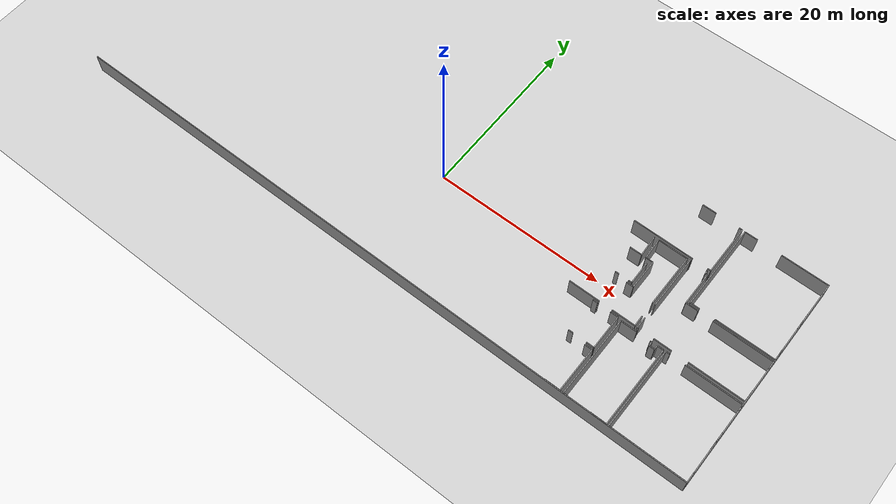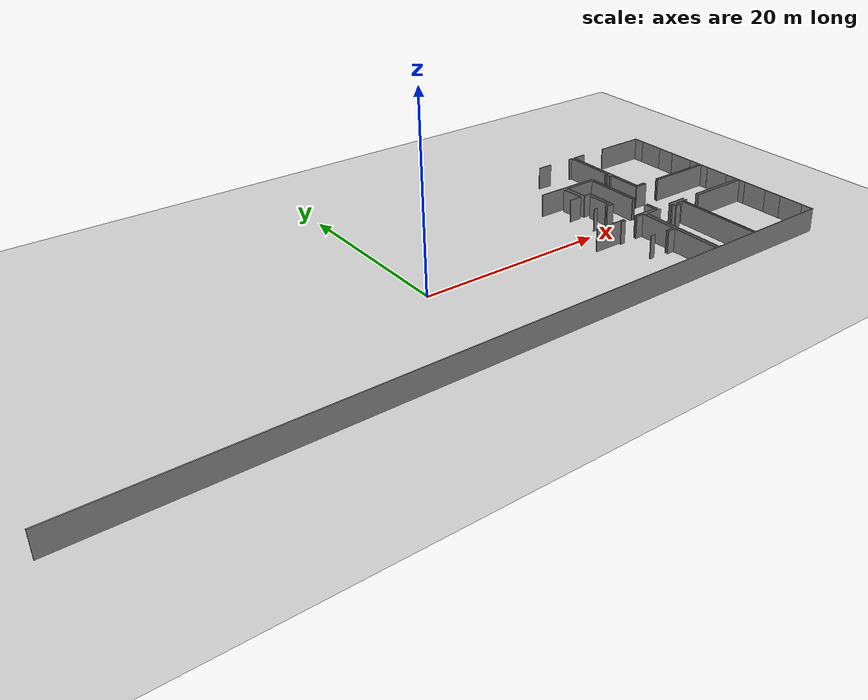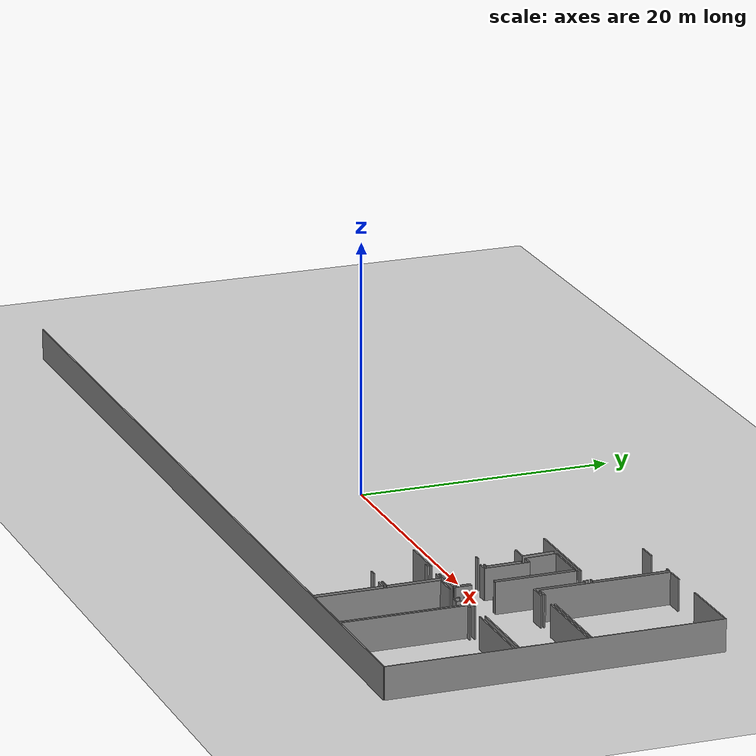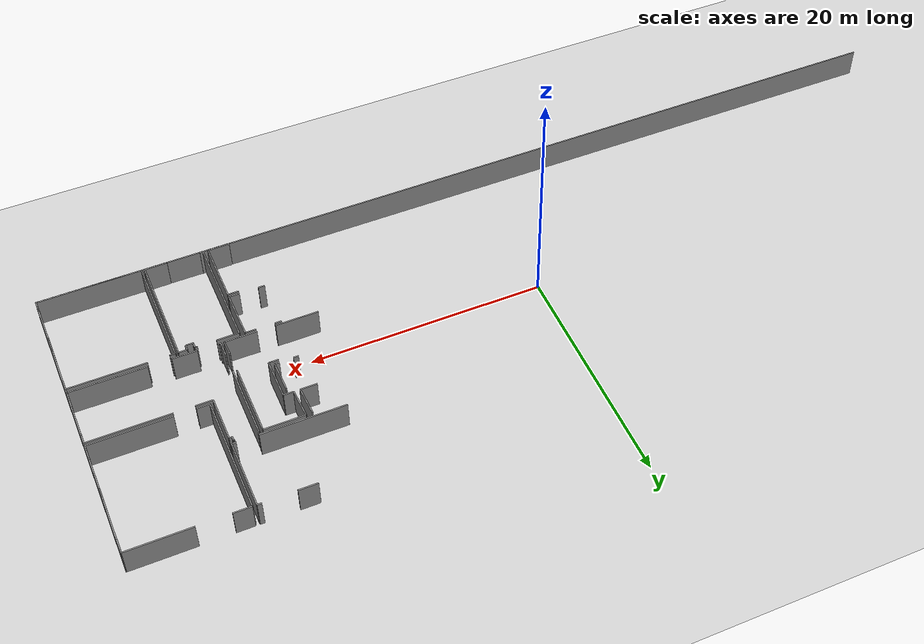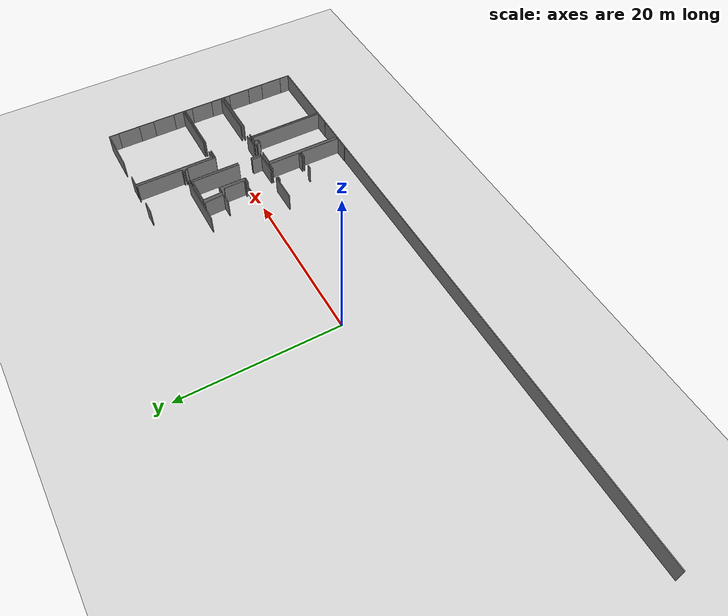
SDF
<sdf version="1.6">
 <world name="default">
  <model name="ground_plane">
   <static>1</static>
   <link name="link">
    <collision name="collision">
     <geometry><plane><normal>0 0 1</normal><size>100 100</size></plane></geometry>
     <surface><friction><ode><mu>100</mu><mu2>50</mu2></ode></friction></surface>
    </collision>
    <visual name="visual">
     <cast_shadows>0</cast_shadows>
     <geometry><plane><normal>0 0 1</normal><size>100 100</size></plane></geometry>
     <material>
      <script><uri>file://media/materials/scripts/gazebo.material</uri><name>Gazebo/Grey</name></script>
     </material>
    </visual>
   </link>
  </model>
  <model name="0510030967_A-40">
   <static>1</static>
   <link name="Wall_244">
    <collision name="Wall_244_Collision">
     <geometry><box><size>2.72639557175 0.1 2.5</size></box></geometry>
     <pose>1.36319778587 0 1.25 0 0 0</pose>
    </collision>
    <visual name="Wall_244_Visual">
     <pose>1.36319778587 0 1.25 0 0 0</pose>
     <geometry><box><size>2.72639557175 0.1 2.5</size></box></geometry>
     <material>
      <script><uri>file://media/materials/scripts/gazebo.material</uri><name>Gazebo/Grey</name></script>
      <ambient>1 1 1 1</ambient>
     </material>
    </visual>
    <pose>64.8392093135 -15.6792819328 0 0 0 3.14159265359</pose>
   </link>
   <link name="Wall_245">
    <collision name="Wall_245_Collision">
     <geometry><box><size>3.61483870149 0.1 2.5</size></box></geometry>
     <pose>1.80741935074 0 1.25 0 0 0</pose>
    </collision>
    <visual name="Wall_245_Visual">
     <pose>1.80741935074 0 1.25 0 0 0</pose>
     <geometry><box><size>3.61483870149 0.1 2.5</size></box></geometry>
     <material>
      <script><uri>file://media/materials/scripts/gazebo.material</uri><name>Gazebo/Grey</name></script>
      <ambient>1 1 1 1</ambient>
     </material>
    </visual>
    <pose>60.569527848 -15.6792819328 0 0 0 3.14159265359</pose>
   </link>
   <link name="Wall_251">
    <collision name="Wall_251_Collision">
     <geometry><box><size>2.48237548308 0.1 2.5</size></box></geometry>
     <pose>1.24118774154 0 1.25 0 0 0</pose>
    </collision>
    <visual name="Wall_251_Visual">
     <pose>1.24118774154 0 1.25 0 0 0</pose>
     <geometry><box><size>2.48237548308 0.1 2.5</size></box></geometry>
     <material>
      <script><uri>file://media/materials/scripts/gazebo.material</uri><name>Gazebo/Grey</name></script>
      <ambient>1 1 1 1</ambient>
     </material>
    </visual>
    <pose>60.8155699722 -6.30073507941 0 0 0 -1.5202964891</pose>
   </link>
   <link name="Wall_252">
    <collision name="Wall_252_Collision">
     <geometry><box><size>1.39411174731 0.1 2.5</size></box></geometry>
     <pose>0.697055873653 0 1.25 0 0 0</pose>
    </collision>
    <visual name="Wall_252_Visual">
     <pose>0.697055873653 0 1.25 0 0 0</pose>
     <geometry><box><size>1.39411174731 0.1 2.5</size></box></geometry>
     <material>
      <script><uri>file://media/materials/scripts/gazebo.material</uri><name>Gazebo/Grey</name></script>
      <ambient>1 1 1 1</ambient>
     </material>
    </visual>
    <pose>60.9408762553 -8.77994591644 0 0 0 3.14159265359</pose>
   </link>
   <link name="Wall_255">
    <collision name="Wall_255_Collision">
     <geometry><box><size>0.825599553112 0.1 2.5</size></box></geometry>
     <pose>0.412799776556 0 1.25 0 0 0</pose>
    </collision>
    <visual name="Wall_255_Visual">
     <pose>0.412799776556 0 1.25 0 0 0</pose>
     <geometry><box><size>0.825599553112 0.1 2.5</size></box></geometry>
     <material>
      <script><uri>file://media/materials/scripts/gazebo.material</uri><name>Gazebo/Grey</name></script>
      <ambient>1 1 1 1</ambient>
     </material>
    </visual>
    <pose>61.4888214608 -12.2692244214 0 0 0 0.0</pose>
   </link>
   <link name="Wall_256">
    <collision name="Wall_256_Collision">
     <geometry><box><size>3.48927850496 0.1 2.5</size></box></geometry>
     <pose>1.74463925248 0 1.25 0 0 0</pose>
    </collision>
    <visual name="Wall_256_Visual">
     <pose>1.74463925248 0 1.25 0 0 0</pose>
     <geometry><box><size>3.48927850496 0.1 2.5</size></box></geometry>
     <material>
      <script><uri>file://media/materials/scripts/gazebo.material</uri><name>Gazebo/Grey</name></script>
      <ambient>1 1 1 1</ambient>
     </material>
    </visual>
    <pose>62.3144210139 -12.2692244214 0 0 0 1.57079632679</pose>
   </link>
   <link name="Wall_257">
    <collision name="Wall_257_Collision">
     <geometry><box><size>0.848197849353 0.1 2.5</size></box></geometry>
     <pose>0.424098924677 0 1.25 0 0 0</pose>
    </collision>
    <visual name="Wall_257_Visual">
     <pose>0.424098924677 0 1.25 0 0 0</pose>
     <geometry><box><size>0.848197849353 0.1 2.5</size></box></geometry>
     <material>
      <script><uri>file://media/materials/scripts/gazebo.material</uri><name>Gazebo/Grey</name></script>
      <ambient>1 1 1 1</ambient>
     </material>
    </visual>
    <pose>62.3144210139 -8.77994591644 0 0 0 3.14159265359</pose>
   </link>
   <link name="Wall_258">
    <collision name="Wall_258_Collision">
     <geometry><box><size>2.50028858254 0.1 2.5</size></box></geometry>
     <pose>1.25014429127 0 1.25 0 0 0</pose>
    </collision>
    <visual name="Wall_258_Visual">
     <pose>1.25014429127 0 1.25 0 0 0</pose>
     <geometry><box><size>2.50028858254 0.1 2.5</size></box></geometry>
     <material>
      <script><uri>file://media/materials/scripts/gazebo.material</uri><name>Gazebo/Grey</name></script>
      <ambient>1 1 1 1</ambient>
     </material>
    </visual>
    <pose>61.4662231645 -8.77994591644 0 0 0 1.61915471171</pose>
   </link>
   <link name="Wall_259">
    <collision name="Wall_259_Collision">
     <geometry><box><size>3.45246105603 0.1 2.5</size></box></geometry>
     <pose>1.72623052801 0 1.25 0 0 0</pose>
    </collision>
    <visual name="Wall_259_Visual">
     <pose>1.72623052801 0 1.25 0 0 0</pose>
     <geometry><box><size>3.45246105603 0.1 2.5</size></box></geometry>
     <material>
      <script><uri>file://media/materials/scripts/gazebo.material</uri><name>Gazebo/Grey</name></script>
      <ambient>1 1 1 1</ambient>
     </material>
    </visual>
    <pose>61.3453603667 -6.28258026839 0 0 0 0.0</pose>
   </link>
   <link name="Wall_260">
    <collision name="Wall_260_Collision">
     <geometry><box><size>6.28321505199 0.1 2.5</size></box></geometry>
     <pose>3.14160752599 0 1.25 0 0 0</pose>
    </collision>
    <visual name="Wall_260_Visual">
     <pose>3.14160752599 0 1.25 0 0 0</pose>
     <geometry><box><size>6.28321505199 0.1 2.5</size></box></geometry>
     <material>
      <script><uri>file://media/materials/scripts/gazebo.material</uri><name>Gazebo/Grey</name></script>
      <ambient>1 1 1 1</ambient>
     </material>
    </visual>
    <pose>64.7978214227 -6.28258026839 0 0 0 -1.57079632679</pose>
   </link>
   <link name="Wall_261">
    <collision name="Wall_261_Collision">
     <geometry><box><size>1.32125219786 0.1 2.5</size></box></geometry>
     <pose>0.660626098932 0 1.25 0 0 0</pose>
    </collision>
    <visual name="Wall_261_Visual">
     <pose>0.660626098932 0 1.25 0 0 0</pose>
     <geometry><box><size>1.32125219786 0.1 2.5</size></box></geometry>
     <material>
      <script><uri>file://media/materials/scripts/gazebo.material</uri><name>Gazebo/Grey</name></script>
      <ambient>1 1 1 1</ambient>
     </material>
    </visual>
    <pose>64.7978214227 -14.3586781266 0 0 0 -1.53946645465</pose>
   </link>
   <link name="Wall_262">
    <collision name="Wall_262_Collision">
     <geometry><box><size>0.395724097655 0.1 2.5</size></box></geometry>
     <pose>0.197862048828 0 1.25 0 0 0</pose>
    </collision>
    <visual name="Wall_262_Visual">
     <pose>0.197862048828 0 1.25 0 0 0</pose>
     <geometry><box><size>0.395724097655 0.1 2.5</size></box></geometry>
     <material>
      <script><uri>file://media/materials/scripts/gazebo.material</uri><name>Gazebo/Grey</name></script>
      <ambient>1 1 1 1</ambient>
     </material>
    </visual>
    <pose>61.9208551805 -11.9833178869 0 0 0 3.14159265359</pose>
   </link>
   <link name="Wall_263">
    <collision name="Wall_263_Collision">
     <geometry><box><size>0.428225018091 0.1 2.5</size></box></geometry>
     <pose>0.214112509046 0 1.25 0 0 0</pose>
    </collision>
    <visual name="Wall_263_Visual">
     <pose>0.214112509046 0 1.25 0 0 0</pose>
     <geometry><box><size>0.428225018091 0.1 2.5</size></box></geometry>
     <material>
      <script><uri>file://media/materials/scripts/gazebo.material</uri><name>Gazebo/Grey</name></script>
      <ambient>1 1 1 1</ambient>
     </material>
    </visual>
    <pose>60.3662701385 -11.9833178869 0 0 0 3.14159265359</pose>
   </link>
   <link name="Wall_266">
    <collision name="Wall_266_Collision">
     <geometry><box><size>2.72046945415 0.1 2.5</size></box></geometry>
     <pose>1.36023472707 0 1.25 0 0 0</pose>
    </collision>
    <visual name="Wall_266_Visual">
     <pose>1.36023472707 0 1.25 0 0 0</pose>
     <geometry><box><size>2.72046945415 0.1 2.5</size></box></geometry>
     <material>
      <script><uri>file://media/materials/scripts/gazebo.material</uri><name>Gazebo/Grey</name></script>
      <ambient>1 1 1 1</ambient>
     </material>
    </visual>
    <pose>61.890639481 -9.26301623776 0 0 0 -1.55968930235</pose>
   </link>
   <link name="Wall_267">
    <collision name="Wall_267_Collision">
     <geometry><box><size>0.89212487463 0.1 2.5</size></box></geometry>
     <pose>0.446062437315 0 1.25 0 0 0</pose>
    </collision>
    <visual name="Wall_267_Visual">
     <pose>0.446062437315 0 1.25 0 0 0</pose>
     <geometry><box><size>0.89212487463 0.1 2.5</size></box></geometry>
     <material>
      <script><uri>file://media/materials/scripts/gazebo.material</uri><name>Gazebo/Grey</name></script>
      <ambient>1 1 1 1</ambient>
     </material>
    </visual>
    <pose>63.0368047533 -20.0812523011 0 0 0 3.14159265359</pose>
   </link>
   <link name="Wall_268">
    <collision name="Wall_268_Collision">
     <geometry><box><size>0.552007820534 0.1 2.5</size></box></geometry>
     <pose>0.276003910267 0 1.25 0 0 0</pose>
    </collision>
    <visual name="Wall_268_Visual">
     <pose>0.276003910267 0 1.25 0 0 0</pose>
     <geometry><box><size>0.552007820534 0.1 2.5</size></box></geometry>
     <material>
      <script><uri>file://media/materials/scripts/gazebo.material</uri><name>Gazebo/Grey</name></script>
      <ambient>1 1 1 1</ambient>
     </material>
    </visual>
    <pose>60.5418512829 -20.0812523011 0 0 0 3.14159265359</pose>
   </link>
   <link name="Wall_272">
    <collision name="Wall_272_Collision">
     <geometry><box><size>0.550357383168 0.1 2.5</size></box></geometry>
     <pose>0.275178691584 0 1.25 0 0 0</pose>
    </collision>
    <visual name="Wall_272_Visual">
     <pose>0.275178691584 0 1.25 0 0 0</pose>
     <geometry><box><size>0.550357383168 0.1 2.5</size></box></geometry>
     <material>
      <script><uri>file://media/materials/scripts/gazebo.material</uri><name>Gazebo/Grey</name></script>
      <ambient>1 1 1 1</ambient>
     </material>
    </visual>
    <pose>59.9898434624 -15.9254510137 0 0 0 0.0</pose>
   </link>
   <link name="Wall_273">
    <collision name="Wall_273_Collision">
     <geometry><box><size>0.905582286998 0.1 2.5</size></box></geometry>
     <pose>0.452791143499 0 1.25 0 0 0</pose>
    </collision>
    <visual name="Wall_273_Visual">
     <pose>0.452791143499 0 1.25 0 0 0</pose>
     <geometry><box><size>0.905582286998 0.1 2.5</size></box></geometry>
     <material>
      <script><uri>file://media/materials/scripts/gazebo.material</uri><name>Gazebo/Grey</name></script>
      <ambient>1 1 1 1</ambient>
     </material>
    </visual>
    <pose>62.1083702566 -15.9254510137 0 0 0 0.0</pose>
   </link>
   <link name="Wall_274">
    <collision name="Wall_274_Collision">
     <geometry><box><size>4.15586411753 0.1 2.5</size></box></geometry>
     <pose>2.07793205876 0 1.25 0 0 0</pose>
    </collision>
    <visual name="Wall_274_Visual">
     <pose>2.07793205876 0 1.25 0 0 0</pose>
     <geometry><box><size>4.15586411753 0.1 2.5</size></box></geometry>
     <material>
      <script><uri>file://media/materials/scripts/gazebo.material</uri><name>Gazebo/Grey</name></script>
      <ambient>1 1 1 1</ambient>
     </material>
    </visual>
    <pose>63.0139525436 -15.9254510137 0 0 0 -1.56529751254</pose>
   </link>
   <link name="Wall_277">
    <collision name="Wall_277_Collision">
     <geometry><box><size>0.909898815494 0.1 2.5</size></box></geometry>
     <pose>0.454949407747 0 1.25 0 0 0</pose>
    </collision>
    <visual name="Wall_277_Visual">
     <pose>0.454949407747 0 1.25 0 0 0</pose>
     <geometry><box><size>0.909898815494 0.1 2.5</size></box></geometry>
     <material>
      <script><uri>file://media/materials/scripts/gazebo.material</uri><name>Gazebo/Grey</name></script>
      <ambient>1 1 1 1</ambient>
     </material>
    </visual>
    <pose>62.1261441974 -20.3497657649 0 0 0 0.0</pose>
   </link>
   <link name="Wall_278">
    <collision name="Wall_278_Collision">
     <geometry><box><size>5.35439968515 0.1 2.5</size></box></geometry>
     <pose>2.67719984257 0 1.25 0 0 0</pose>
    </collision>
    <visual name="Wall_278_Visual">
     <pose>2.67719984257 0 1.25 0 0 0</pose>
     <geometry><box><size>5.35439968515 0.1 2.5</size></box></geometry>
     <material>
      <script><uri>file://media/materials/scripts/gazebo.material</uri><name>Gazebo/Grey</name></script>
      <ambient>1 1 1 1</ambient>
     </material>
    </visual>
    <pose>63.0360430129 -20.3497657649 0 0 0 -1.57079632679</pose>
   </link>
   <link name="Wall_279">
    <collision name="Wall_279_Collision">
     <geometry><box><size>1.82766894766 0.1 2.5</size></box></geometry>
     <pose>0.913834473828 0 1.25 0 0 0</pose>
    </collision>
    <visual name="Wall_279_Visual">
     <pose>0.913834473828 0 1.25 0 0 0</pose>
     <geometry><box><size>1.82766894766 0.1 2.5</size></box></geometry>
     <material>
      <script><uri>file://media/materials/scripts/gazebo.material</uri><name>Gazebo/Grey</name></script>
      <ambient>1 1 1 1</ambient>
     </material>
    </visual>
    <pose>63.0360430129 -25.70416545 0 0 0 3.14159265359</pose>
   </link>
   <link name="Wall_290">
    <collision name="Wall_290_Collision">
     <geometry><box><size>6.39519087943 0.1 2.5</size></box></geometry>
     <pose>3.19759543971 0 1.25 0 0 0</pose>
    </collision>
    <visual name="Wall_290_Visual">
     <pose>3.19759543971 0 1.25 0 0 0</pose>
     <geometry><box><size>6.39519087943 0.1 2.5</size></box></geometry>
     <material>
      <script><uri>file://media/materials/scripts/gazebo.material</uri><name>Gazebo/Grey</name></script>
      <ambient>1 1 1 1</ambient>
     </material>
    </visual>
    <pose>77.4469003517 -15.6867723793 0 0 0 3.14159265359</pose>
   </link>
   <link name="Wall_291">
    <collision name="Wall_291_Collision">
     <geometry><box><size>2.08323282593 0.1 2.5</size></box></geometry>
     <pose>1.04161641296 0 1.25 0 0 0</pose>
    </collision>
    <visual name="Wall_291_Visual">
     <pose>1.04161641296 0 1.25 0 0 0</pose>
     <geometry><box><size>2.08323282593 0.1 2.5</size></box></geometry>
     <material>
      <script><uri>file://media/materials/scripts/gazebo.material</uri><name>Gazebo/Grey</name></script>
      <ambient>1 1 1 1</ambient>
     </material>
    </visual>
    <pose>69.1206977541 -15.6867723793 0 0 0 3.14159265359</pose>
   </link>
   <link name="Wall_292">
    <collision name="Wall_292_Collision">
     <geometry><box><size>0.143461094113 0.1 2.5</size></box></geometry>
     <pose>0.0717305470565 0 1.25 0 0 0</pose>
    </collision>
    <visual name="Wall_292_Visual">
     <pose>0.0717305470565 0 1.25 0 0 0</pose>
     <geometry><box><size>0.143461094113 0.1 2.5</size></box></geometry>
     <material>
      <script><uri>file://media/materials/scripts/gazebo.material</uri><name>Gazebo/Grey</name></script>
      <ambient>1 1 1 1</ambient>
     </material>
    </visual>
    <pose>65.266799548 -15.6867723793 0 0 0 3.14159265359</pose>
   </link>
   <link name="Wall_293">
    <collision name="Wall_293_Collision">
     <geometry><box><size>1.31387509998 0.1 2.5</size></box></geometry>
     <pose>0.656937549989 0 1.25 0 0 0</pose>
    </collision>
    <visual name="Wall_293_Visual">
     <pose>0.656937549989 0 1.25 0 0 0</pose>
     <geometry><box><size>1.31387509998 0.1 2.5</size></box></geometry>
     <material>
      <script><uri>file://media/materials/scripts/gazebo.material</uri><name>Gazebo/Grey</name></script>
      <ambient>1 1 1 1</ambient>
     </material>
    </visual>
    <pose>65.1233384539 -15.6867723793 0 0 0 1.57079632679</pose>
   </link>
   <link name="Wall_294">
    <collision name="Wall_294_Collision">
     <geometry><box><size>6.35862734394 0.1 2.5</size></box></geometry>
     <pose>3.17931367197 0 1.25 0 0 0</pose>
    </collision>
    <visual name="Wall_294_Visual">
     <pose>3.17931367197 0 1.25 0 0 0</pose>
     <geometry><box><size>6.35862734394 0.1 2.5</size></box></geometry>
     <material>
      <script><uri>file://media/materials/scripts/gazebo.material</uri><name>Gazebo/Grey</name></script>
      <ambient>1 1 1 1</ambient>
     </material>
    </visual>
    <pose>65.1233384539 -12.5802683865 0 0 0 1.57079632679</pose>
   </link>
   <link name="Wall_295">
    <collision name="Wall_295_Collision">
     <geometry><box><size>0.0845531758224 0.1 2.5</size></box></geometry>
     <pose>0.0422765879112 0 1.25 0 0 0</pose>
    </collision>
    <visual name="Wall_295_Visual">
     <pose>0.0422765879112 0 1.25 0 0 0</pose>
     <geometry><box><size>0.0845531758224 0.1 2.5</size></box></geometry>
     <material>
      <script><uri>file://media/materials/scripts/gazebo.material</uri><name>Gazebo/Grey</name></script>
      <ambient>1 1 1 1</ambient>
     </material>
    </visual>
    <pose>65.1233384539 -6.22164104257 0 0 0 0.0</pose>
   </link>
   <link name="Wall_296">
    <collision name="Wall_296_Collision">
     <geometry><box><size>0.100930592761 0.1 2.5</size></box></geometry>
     <pose>0.0504652963805 0 1.25 0 0 0</pose>
    </collision>
    <visual name="Wall_296_Visual">
     <pose>0.0504652963805 0 1.25 0 0 0</pose>
     <geometry><box><size>0.100930592761 0.1 2.5</size></box></geometry>
     <material>
      <script><uri>file://media/materials/scripts/gazebo.material</uri><name>Gazebo/Grey</name></script>
      <ambient>1 1 1 1</ambient>
     </material>
    </visual>
    <pose>67.0185483769 -6.22164104257 0 0 0 0.0</pose>
   </link>
   <link name="Wall_297">
    <collision name="Wall_297_Collision">
     <geometry><box><size>0.347480543883 0.1 2.5</size></box></geometry>
     <pose>0.173740271941 0 1.25 0 0 0</pose>
    </collision>
    <visual name="Wall_297_Visual">
     <pose>0.173740271941 0 1.25 0 0 0</pose>
     <geometry><box><size>0.347480543883 0.1 2.5</size></box></geometry>
     <material>
      <script><uri>file://media/materials/scripts/gazebo.material</uri><name>Gazebo/Grey</name></script>
      <ambient>1 1 1 1</ambient>
     </material>
    </visual>
    <pose>67.1194789696 -6.22164104257 0 0 0 -1.57079632679</pose>
   </link>
   <link name="Wall_298">
    <collision name="Wall_298_Collision">
     <geometry><box><size>0.258864753006 0.1 2.5</size></box></geometry>
     <pose>0.129432376503 0 1.25 0 0 0</pose>
    </collision>
    <visual name="Wall_298_Visual">
     <pose>0.129432376503 0 1.25 0 0 0</pose>
     <geometry><box><size>0.258864753006 0.1 2.5</size></box></geometry>
     <material>
      <script><uri>file://media/materials/scripts/gazebo.material</uri><name>Gazebo/Grey</name></script>
      <ambient>1 1 1 1</ambient>
     </material>
    </visual>
    <pose>67.1194789696 -6.56912158645 0 0 0 0.0</pose>
   </link>
   <link name="Wall_299">
    <collision name="Wall_299_Collision">
     <geometry><box><size>3.91775743649 0.1 2.5</size></box></geometry>
     <pose>1.95887871824 0 1.25 0 0 0</pose>
    </collision>
    <visual name="Wall_299_Visual">
     <pose>1.95887871824 0 1.25 0 0 0</pose>
     <geometry><box><size>3.91775743649 0.1 2.5</size></box></geometry>
     <material>
      <script><uri>file://media/materials/scripts/gazebo.material</uri><name>Gazebo/Grey</name></script>
      <ambient>1 1 1 1</ambient>
     </material>
    </visual>
    <pose>67.3783437226 -6.56912158645 0 0 0 -1.57079632679</pose>
   </link>
   <link name="Wall_300">
    <collision name="Wall_300_Collision">
     <geometry><box><size>1.4151865629 0.1 2.5</size></box></geometry>
     <pose>0.70759328145 0 1.25 0 0 0</pose>
    </collision>
    <visual name="Wall_300_Visual">
     <pose>0.70759328145 0 1.25 0 0 0</pose>
     <geometry><box><size>1.4151865629 0.1 2.5</size></box></geometry>
     <material>
      <script><uri>file://media/materials/scripts/gazebo.material</uri><name>Gazebo/Grey</name></script>
      <ambient>1 1 1 1</ambient>
     </material>
    </visual>
    <pose>67.3783437226 -10.4868790229 0 0 0 0.0</pose>
   </link>
   <link name="Wall_301">
    <collision name="Wall_301_Collision">
     <geometry><box><size>6.91799865426 0.1 2.5</size></box></geometry>
     <pose>3.45899932713 0 1.25 0 0 0</pose>
    </collision>
    <visual name="Wall_301_Visual">
     <pose>3.45899932713 0 1.25 0 0 0</pose>
     <geometry><box><size>6.91799865426 0.1 2.5</size></box></geometry>
     <material>
      <script><uri>file://media/materials/scripts/gazebo.material</uri><name>Gazebo/Grey</name></script>
      <ambient>1 1 1 1</ambient>
     </material>
    </visual>
    <pose>70.5469295517 -10.4868790229 0 0 0 0.0</pose>
   </link>
   <link name="Wall_302">
    <collision name="Wall_302_Collision">
     <geometry><box><size>0.9676641233 0.1 2.5</size></box></geometry>
     <pose>0.48383206165 0 1.25 0 0 0</pose>
    </collision>
    <visual name="Wall_302_Visual">
     <pose>0.48383206165 0 1.25 0 0 0</pose>
     <geometry><box><size>0.9676641233 0.1 2.5</size></box></geometry>
     <material>
      <script><uri>file://media/materials/scripts/gazebo.material</uri><name>Gazebo/Grey</name></script>
      <ambient>1 1 1 1</ambient>
     </material>
    </visual>
    <pose>77.464928206 -10.4868790229 0 0 0 -1.57079632679</pose>
   </link>
   <link name="Wall_303">
    <collision name="Wall_303_Collision">
     <geometry><box><size>1.44246796085 0.1 2.5</size></box></geometry>
     <pose>0.721233980425 0 1.25 0 0 0</pose>
    </collision>
    <visual name="Wall_303_Visual">
     <pose>0.721233980425 0 1.25 0 0 0</pose>
     <geometry><box><size>1.44246796085 0.1 2.5</size></box></geometry>
     <material>
      <script><uri>file://media/materials/scripts/gazebo.material</uri><name>Gazebo/Grey</name></script>
      <ambient>1 1 1 1</ambient>
     </material>
    </visual>
    <pose>77.464928206 -14.2444170782 0 0 0 -1.58329457573</pose>
   </link>
   <link name="Wall_304">
    <collision name="Wall_304_Collision">
     <geometry><box><size>1.90079601864 0.1 2.5</size></box></geometry>
     <pose>0.950398009319 0 1.25 0 0 0</pose>
    </collision>
    <visual name="Wall_304_Visual">
     <pose>0.950398009319 0 1.25 0 0 0</pose>
     <geometry><box><size>1.90079601864 0.1 2.5</size></box></geometry>
     <material>
      <script><uri>file://media/materials/scripts/gazebo.material</uri><name>Gazebo/Grey</name></script>
      <ambient>1 1 1 1</ambient>
     </material>
    </visual>
    <pose>68.4487158328 -25.7205428669 0 0 0 3.14159265359</pose>
   </link>
   <link name="Wall_305">
    <collision name="Wall_305_Collision">
     <geometry><box><size>0.28806479871 0.1 2.5</size></box></geometry>
     <pose>0.144032399355 0 1.25 0 0 0</pose>
    </collision>
    <visual name="Wall_305_Visual">
     <pose>0.144032399355 0 1.25 0 0 0</pose>
     <geometry><box><size>0.28806479871 0.1 2.5</size></box></geometry>
     <material>
      <script><uri>file://media/materials/scripts/gazebo.material</uri><name>Gazebo/Grey</name></script>
      <ambient>1 1 1 1</ambient>
     </material>
    </visual>
    <pose>63.7448423832 -25.7205428669 0 0 0 3.14159265359</pose>
   </link>
   <link name="Wall_306">
    <collision name="Wall_306_Collision">
     <geometry><box><size>9.61976462224 0.1 2.5</size></box></geometry>
     <pose>4.80988231112 0 1.25 0 0 0</pose>
    </collision>
    <visual name="Wall_306_Visual">
     <pose>4.80988231112 0 1.25 0 0 0</pose>
     <geometry><box><size>9.61976462224 0.1 2.5</size></box></geometry>
     <material>
      <script><uri>file://media/materials/scripts/gazebo.material</uri><name>Gazebo/Grey</name></script>
      <ambient>1 1 1 1</ambient>
     </material>
    </visual>
    <pose>63.4567775845 -25.7205428669 0 0 0 1.57079632679</pose>
   </link>
   <link name="Wall_307">
    <collision name="Wall_307_Collision">
     <geometry><box><size>1.88175251057 0.1 2.5</size></box></geometry>
     <pose>0.940876255285 0 1.25 0 0 0</pose>
    </collision>
    <visual name="Wall_307_Visual">
     <pose>0.940876255285 0 1.25 0 0 0</pose>
     <geometry><box><size>1.88175251057 0.1 2.5</size></box></geometry>
     <material>
      <script><uri>file://media/materials/scripts/gazebo.material</uri><name>Gazebo/Grey</name></script>
      <ambient>1 1 1 1</ambient>
     </material>
    </visual>
    <pose>63.4567775845 -16.1007782447 0 0 0 0.0</pose>
   </link>
   <link name="Wall_308">
    <collision name="Wall_308_Collision">
     <geometry><box><size>0.208716848426 0.1 2.5</size></box></geometry>
     <pose>0.104358424213 0 1.25 0 0 0</pose>
    </collision>
    <visual name="Wall_308_Visual">
     <pose>0.104358424213 0 1.25 0 0 0</pose>
     <geometry><box><size>0.208716848426 0.1 2.5</size></box></geometry>
     <material>
      <script><uri>file://media/materials/scripts/gazebo.material</uri><name>Gazebo/Grey</name></script>
      <ambient>1 1 1 1</ambient>
     </material>
    </visual>
    <pose>66.9009864537 -16.1007782447 0 0 0 0.0</pose>
   </link>
   <link name="Wall_309">
    <collision name="Wall_309_Collision">
     <geometry><box><size>0.475833788262 0.1 2.5</size></box></geometry>
     <pose>0.237916894131 0 1.25 0 0 0</pose>
    </collision>
    <visual name="Wall_309_Visual">
     <pose>0.237916894131 0 1.25 0 0 0</pose>
     <geometry><box><size>0.475833788262 0.1 2.5</size></box></geometry>
     <material>
      <script><uri>file://media/materials/scripts/gazebo.material</uri><name>Gazebo/Grey</name></script>
      <ambient>1 1 1 1</ambient>
     </material>
    </visual>
    <pose>67.1097033021 -16.1007782447 0 0 0 -1.57079632679</pose>
   </link>
   <link name="Wall_310">
    <collision name="Wall_310_Collision">
     <geometry><box><size>0.626150545279 0.1 2.5</size></box></geometry>
     <pose>0.31307527264 0 1.25 0 0 0</pose>
    </collision>
    <visual name="Wall_310_Visual">
     <pose>0.31307527264 0 1.25 0 0 0</pose>
     <geometry><box><size>0.626150545279 0.1 2.5</size></box></geometry>
     <material>
      <script><uri>file://media/materials/scripts/gazebo.material</uri><name>Gazebo/Grey</name></script>
      <ambient>1 1 1 1</ambient>
     </material>
    </visual>
    <pose>67.1097033021 -16.576612033 0 0 0 0.0</pose>
   </link>
   <link name="Wall_311">
    <collision name="Wall_311_Collision">
     <geometry><box><size>0.484085975091 0.1 2.5</size></box></geometry>
     <pose>0.242042987546 0 1.25 0 0 0</pose>
    </collision>
    <visual name="Wall_311_Visual">
     <pose>0.242042987546 0 1.25 0 0 0</pose>
     <geometry><box><size>0.484085975091 0.1 2.5</size></box></geometry>
     <material>
      <script><uri>file://media/materials/scripts/gazebo.material</uri><name>Gazebo/Grey</name></script>
      <ambient>1 1 1 1</ambient>
     </material>
    </visual>
    <pose>67.7358538474 -16.576612033 0 0 0 1.57079632679</pose>
   </link>
   <link name="Wall_312">
    <collision name="Wall_312_Collision">
     <geometry><box><size>0.717813297447 0.1 2.5</size></box></geometry>
     <pose>0.358906648723 0 1.25 0 0 0</pose>
    </collision>
    <visual name="Wall_312_Visual">
     <pose>0.358906648723 0 1.25 0 0 0</pose>
     <geometry><box><size>0.717813297447 0.1 2.5</size></box></geometry>
     <material>
      <script><uri>file://media/materials/scripts/gazebo.material</uri><name>Gazebo/Grey</name></script>
      <ambient>1 1 1 1</ambient>
     </material>
    </visual>
    <pose>67.7358538474 -16.0925260579 0 0 0 0.0</pose>
   </link>
   <link name="Wall_313">
    <collision name="Wall_313_Collision">
     <geometry><box><size>9.6280180822 0.1 2.5</size></box></geometry>
     <pose>4.8140090411 0 1.25 0 0 0</pose>
    </collision>
    <visual name="Wall_313_Visual">
     <pose>4.8140090411 0 1.25 0 0 0</pose>
     <geometry><box><size>9.6280180822 0.1 2.5</size></box></geometry>
     <material>
      <script><uri>file://media/materials/scripts/gazebo.material</uri><name>Gazebo/Grey</name></script>
      <ambient>1 1 1 1</ambient>
     </material>
    </visual>
    <pose>68.4536671449 -16.0925260579 0 0 0 -1.5713105876</pose>
   </link>
   <link name="Wall_314">
    <collision name="Wall_314_Collision">
     <geometry><box><size>8.77372503713 0.1 2.5</size></box></geometry>
     <pose>4.38686251857 0 1.25 0 0 0</pose>
    </collision>
    <visual name="Wall_314_Visual">
     <pose>4.38686251857 0 1.25 0 0 0</pose>
     <geometry><box><size>8.77372503713 0.1 2.5</size></box></geometry>
     <material>
      <script><uri>file://media/materials/scripts/gazebo.material</uri><name>Gazebo/Grey</name></script>
      <ambient>1 1 1 1</ambient>
     </material>
    </visual>
    <pose>77.4778777915 -25.7390785481 0 0 0 3.14159265359</pose>
   </link>
   <link name="Wall_315">
    <collision name="Wall_315_Collision">
     <geometry><box><size>9.66331077736 0.1 2.5</size></box></geometry>
     <pose>4.83165538868 0 1.25 0 0 0</pose>
    </collision>
    <visual name="Wall_315_Visual">
     <pose>4.83165538868 0 1.25 0 0 0</pose>
     <geometry><box><size>9.66331077736 0.1 2.5</size></box></geometry>
     <material>
      <script><uri>file://media/materials/scripts/gazebo.material</uri><name>Gazebo/Grey</name></script>
      <ambient>1 1 1 1</ambient>
     </material>
    </visual>
    <pose>68.7041527543 -25.7390785481 0 0 0 1.57079632679</pose>
   </link>
   <link name="Wall_316">
    <collision name="Wall_316_Collision">
     <geometry><box><size>0.467454644712 0.1 2.5</size></box></geometry>
     <pose>0.233727322356 0 1.25 0 0 0</pose>
    </collision>
    <visual name="Wall_316_Visual">
     <pose>0.233727322356 0 1.25 0 0 0</pose>
     <geometry><box><size>0.467454644712 0.1 2.5</size></box></geometry>
     <material>
      <script><uri>file://media/materials/scripts/gazebo.material</uri><name>Gazebo/Grey</name></script>
      <ambient>1 1 1 1</ambient>
     </material>
    </visual>
    <pose>68.7041527543 -16.0757677708 0 0 0 0.0</pose>
   </link>
   <link name="Wall_317">
    <collision name="Wall_317_Collision">
     <geometry><box><size>6.51821194155 0.1 2.5</size></box></geometry>
     <pose>3.25910597077 0 1.25 0 0 0</pose>
    </collision>
    <visual name="Wall_317_Visual">
     <pose>3.25910597077 0 1.25 0 0 0</pose>
     <geometry><box><size>6.51821194155 0.1 2.5</size></box></geometry>
     <material>
      <script><uri>file://media/materials/scripts/gazebo.material</uri><name>Gazebo/Grey</name></script>
      <ambient>1 1 1 1</ambient>
     </material>
    </visual>
    <pose>70.9446849569 -16.0757677708 0 0 0 0.0</pose>
   </link>
   <link name="Wall_318">
    <collision name="Wall_318_Collision">
     <geometry><box><size>0.794495156601 0.1 2.5</size></box></geometry>
     <pose>0.397247578301 0 1.25 0 0 0</pose>
    </collision>
    <visual name="Wall_318_Visual">
     <pose>0.397247578301 0 1.25 0 0 0</pose>
     <geometry><box><size>0.794495156601 0.1 2.5</size></box></geometry>
     <material>
      <script><uri>file://media/materials/scripts/gazebo.material</uri><name>Gazebo/Grey</name></script>
      <ambient>1 1 1 1</ambient>
     </material>
    </visual>
    <pose>77.4628968984 -16.0757677708 0 0 0 -1.57079632679</pose>
   </link>
   <link name="Wall_319">
    <collision name="Wall_319_Collision">
     <geometry><box><size>1.99347442457 0.1 2.5</size></box></geometry>
     <pose>0.996737212284 0 1.25 0 0 0</pose>
    </collision>
    <visual name="Wall_319_Visual">
     <pose>0.996737212284 0 1.25 0 0 0</pose>
     <geometry><box><size>1.99347442457 0.1 2.5</size></box></geometry>
     <material>
      <script><uri>file://media/materials/scripts/gazebo.material</uri><name>Gazebo/Grey</name></script>
      <ambient>1 1 1 1</ambient>
     </material>
    </visual>
    <pose>77.4628968984 -19.6664846954 0 0 0 -1.57079632679</pose>
   </link>
   <link name="Wall_320">
    <collision name="Wall_320_Collision">
     <geometry><box><size>1.28349291833 0.1 2.5</size></box></geometry>
     <pose>0.641746459163 0 1.25 0 0 0</pose>
    </collision>
    <visual name="Wall_320_Visual">
     <pose>0.641746459163 0 1.25 0 0 0</pose>
     <geometry><box><size>1.28349291833 0.1 2.5</size></box></geometry>
     <material>
      <script><uri>file://media/materials/scripts/gazebo.material</uri><name>Gazebo/Grey</name></script>
      <ambient>1 1 1 1</ambient>
     </material>
    </visual>
    <pose>77.4628968984 -24.4556730611 0 0 0 -1.55912409006</pose>
   </link>
   <link name="Wall_323">
    <collision name="Wall_323_Collision">
     <geometry><box><size>1.62212601724 0.1 2.5</size></box></geometry>
     <pose>0.81106300862 0 1.25 0 0 0</pose>
    </collision>
    <visual name="Wall_323_Visual">
     <pose>0.81106300862 0 1.25 0 0 0</pose>
     <geometry><box><size>1.62212601724 0.1 2.5</size></box></geometry>
     <material>
      <script><uri>file://media/materials/scripts/gazebo.material</uri><name>Gazebo/Grey</name></script>
      <ambient>1 1 1 1</ambient>
     </material>
    </visual>
    <pose>62.6127693069 -0.023486993284 0 0 0 0.0</pose>
   </link>
   <link name="Wall_324">
    <collision name="Wall_324_Collision">
     <geometry><box><size>0.373252758135 0.1 2.5</size></box></geometry>
     <pose>0.186626379067 0 1.25 0 0 0</pose>
    </collision>
    <visual name="Wall_324_Visual">
     <pose>0.186626379067 0 1.25 0 0 0</pose>
     <geometry><box><size>0.373252758135 0.1 2.5</size></box></geometry>
     <material>
      <script><uri>file://media/materials/scripts/gazebo.material</uri><name>Gazebo/Grey</name></script>
      <ambient>1 1 1 1</ambient>
     </material>
    </visual>
    <pose>66.9987431285 -0.023486993284 0 0 0 0.0</pose>
   </link>
   <link name="Wall_325">
    <collision name="Wall_325_Collision">
     <geometry><box><size>5.93789277235 0.1 2.5</size></box></geometry>
     <pose>2.96894638618 0 1.25 0 0 0</pose>
    </collision>
    <visual name="Wall_325_Visual">
     <pose>2.96894638618 0 1.25 0 0 0</pose>
     <geometry><box><size>5.93789277235 0.1 2.5</size></box></geometry>
     <material>
      <script><uri>file://media/materials/scripts/gazebo.material</uri><name>Gazebo/Grey</name></script>
      <ambient>1 1 1 1</ambient>
     </material>
    </visual>
    <pose>67.3719958866 -0.023486993284 0 0 0 -1.57079632679</pose>
   </link>
   <link name="Wall_326">
    <collision name="Wall_326_Collision">
     <geometry><box><size>0.36081099953 0.1 2.5</size></box></geometry>
     <pose>0.180405499765 0 1.25 0 0 0</pose>
    </collision>
    <visual name="Wall_326_Visual">
     <pose>0.180405499765 0 1.25 0 0 0</pose>
     <geometry><box><size>0.36081099953 0.1 2.5</size></box></geometry>
     <material>
      <script><uri>file://media/materials/scripts/gazebo.material</uri><name>Gazebo/Grey</name></script>
      <ambient>1 1 1 1</ambient>
     </material>
    </visual>
    <pose>67.3719958866 -5.96137976564 0 0 0 3.14159265359</pose>
   </link>
   <link name="Wall_327">
    <collision name="Wall_327_Collision">
     <geometry><box><size>7.11176148455 0.1 2.5</size></box></geometry>
     <pose>3.55588074227 0 1.25 0 0 0</pose>
    </collision>
    <visual name="Wall_327_Visual">
     <pose>3.55588074227 0 1.25 0 0 0</pose>
     <geometry><box><size>7.11176148455 0.1 2.5</size></box></geometry>
     <material>
      <script><uri>file://media/materials/scripts/gazebo.material</uri><name>Gazebo/Grey</name></script>
      <ambient>1 1 1 1</ambient>
     </material>
    </visual>
    <pose>65.222745566 -5.96137976564 0 0 0 3.13884349508</pose>
   </link>
   <link name="Wall_328">
    <collision name="Wall_328_Collision">
     <geometry><box><size>6.89438470425 0.1 2.5</size></box></geometry>
     <pose>3.44719235213 0 1.25 0 0 0</pose>
    </collision>
    <visual name="Wall_328_Visual">
     <pose>3.44719235213 0 1.25 0 0 0</pose>
     <geometry><box><size>6.89438470425 0.1 2.5</size></box></geometry>
     <material>
      <script><uri>file://media/materials/scripts/gazebo.material</uri><name>Gazebo/Grey</name></script>
      <ambient>1 1 1 1</ambient>
     </material>
    </visual>
    <pose>77.476735181 -10.2228090444 0 0 0 3.14159265359</pose>
   </link>
   <link name="Wall_329">
    <collision name="Wall_329_Collision">
     <geometry><box><size>1.08878083461 0.1 2.5</size></box></geometry>
     <pose>0.544390417307 0 1.25 0 0 0</pose>
    </collision>
    <visual name="Wall_329_Visual">
     <pose>0.544390417307 0 1.25 0 0 0</pose>
     <geometry><box><size>1.08878083461 0.1 2.5</size></box></geometry>
     <material>
      <script><uri>file://media/materials/scripts/gazebo.material</uri><name>Gazebo/Grey</name></script>
      <ambient>1 1 1 1</ambient>
     </material>
    </visual>
    <pose>68.801020732 -10.2228090444 0 0 0 3.14159265359</pose>
   </link>
   <link name="Wall_330">
    <collision name="Wall_330_Collision">
     <geometry><box><size>10.1863724656 0.1 2.5</size></box></geometry>
     <pose>5.09318623281 0 1.25 0 0 0</pose>
    </collision>
    <visual name="Wall_330_Visual">
     <pose>5.09318623281 0 1.25 0 0 0</pose>
     <geometry><box><size>10.1863724656 0.1 2.5</size></box></geometry>
     <material>
      <script><uri>file://media/materials/scripts/gazebo.material</uri><name>Gazebo/Grey</name></script>
      <ambient>1 1 1 1</ambient>
     </material>
    </visual>
    <pose>67.7122398974 -10.2228090444 0 0 0 1.57079632679</pose>
   </link>
   <link name="Wall_331">
    <collision name="Wall_331_Collision">
     <geometry><box><size>1.5039293105 0.1 2.5</size></box></geometry>
     <pose>0.751964655249 0 1.25 0 0 0</pose>
    </collision>
    <visual name="Wall_331_Visual">
     <pose>0.751964655249 0 1.25 0 0 0</pose>
     <geometry><box><size>1.5039293105 0.1 2.5</size></box></geometry>
     <material>
      <script><uri>file://media/materials/scripts/gazebo.material</uri><name>Gazebo/Grey</name></script>
      <ambient>1 1 1 1</ambient>
     </material>
    </visual>
    <pose>67.7122398974 -0.0364365787703 0 0 0 0.0</pose>
   </link>
   <link name="Wall_332">
    <collision name="Wall_332_Collision">
     <geometry><box><size>5.4409841685 0.1 2.5</size></box></geometry>
     <pose>2.72049208425 0 1.25 0 0 0</pose>
    </collision>
    <visual name="Wall_332_Visual">
     <pose>2.72049208425 0 1.25 0 0 0</pose>
     <geometry><box><size>5.4409841685 0.1 2.5</size></box></geometry>
     <material>
      <script><uri>file://media/materials/scripts/gazebo.material</uri><name>Gazebo/Grey</name></script>
      <ambient>1 1 1 1</ambient>
     </material>
    </visual>
    <pose>72.0263562152 -0.0364365787703 0 0 0 0.0</pose>
   </link>
   <link name="Wall_333">
    <collision name="Wall_333_Collision">
     <geometry><box><size>1.22348191502 0.1 2.5</size></box></geometry>
     <pose>0.611740957508 0 1.25 0 0 0</pose>
    </collision>
    <visual name="Wall_333_Visual">
     <pose>0.611740957508 0 1.25 0 0 0</pose>
     <geometry><box><size>1.22348191502 0.1 2.5</size></box></geometry>
     <material>
      <script><uri>file://media/materials/scripts/gazebo.material</uri><name>Gazebo/Grey</name></script>
      <ambient>1 1 1 1</ambient>
     </material>
    </visual>
    <pose>77.4673403837 -0.0364365787703 0 0 0 -1.57079632679</pose>
   </link>
   <link name="Wall_334">
    <collision name="Wall_334_Collision">
     <geometry><box><size>2.00413878909 0.1 2.5</size></box></geometry>
     <pose>1.00206939454 0 1.25 0 0 0</pose>
    </collision>
    <visual name="Wall_334_Visual">
     <pose>1.00206939454 0 1.25 0 0 0</pose>
     <geometry><box><size>2.00413878909 0.1 2.5</size></box></geometry>
     <material>
      <script><uri>file://media/materials/scripts/gazebo.material</uri><name>Gazebo/Grey</name></script>
      <ambient>1 1 1 1</ambient>
     </material>
    </visual>
    <pose>77.4673403837 -4.05055416608 0 0 0 -1.57079632679</pose>
   </link>
   <link name="Wall_335">
    <collision name="Wall_335_Collision">
     <geometry><box><size>1.36887959917 0.1 2.5</size></box></geometry>
     <pose>0.684439799584 0 1.25 0 0 0</pose>
    </collision>
    <visual name="Wall_335_Visual">
     <pose>0.684439799584 0 1.25 0 0 0</pose>
     <geometry><box><size>1.36887959917 0.1 2.5</size></box></geometry>
     <material>
      <script><uri>file://media/materials/scripts/gazebo.material</uri><name>Gazebo/Grey</name></script>
      <ambient>1 1 1 1</ambient>
     </material>
    </visual>
    <pose>77.4673403837 -8.85396168446 0 0 0 -1.56393314389</pose>
   </link>
   <link name="Wall_336">
    <collision name="Wall_336_Collision">
     <geometry><box><size>25.7445376871 0.1 2.5</size></box></geometry>
     <pose>12.8722688436 0 1.25 0 0 0</pose>
    </collision>
    <visual name="Wall_336_Visual">
     <pose>12.8722688436 0 1.25 0 0 0</pose>
     <geometry><box><size>25.7445376871 0.1 2.5</size></box></geometry>
     <material>
      <script><uri>file://media/materials/scripts/gazebo.material</uri><name>Gazebo/Grey</name></script>
      <ambient>1 1 1 1</ambient>
     </material>
    </visual>
    <pose>77.4778777915 -25.7445376871 0 0 0 1.57079632679</pose>
   </link>
   <link name="Wall_337">
    <collision name="Wall_337_Collision">
     <geometry><box><size>77.4778777915 0.1 2.5</size></box></geometry>
     <pose>38.7389388957 0 1.25 0 0 0</pose>
    </collision>
    <visual name="Wall_337_Visual">
     <pose>38.7389388957 0 1.25 0 0 0</pose>
     <geometry><box><size>77.4778777915 0.1 2.5</size></box></geometry>
     <material>
      <script><uri>file://media/materials/scripts/gazebo.material</uri><name>Gazebo/Grey</name></script>
      <ambient>1 1 1 1</ambient>
     </material>
    </visual>
    <pose>77.4778777915 -25.7445376871 0 0 0 3.14159265359</pose>
   </link>
   <pose>-38.7 12.8945376871 0 0 0 0</pose>
  </model>
 </world>
</sdf>
